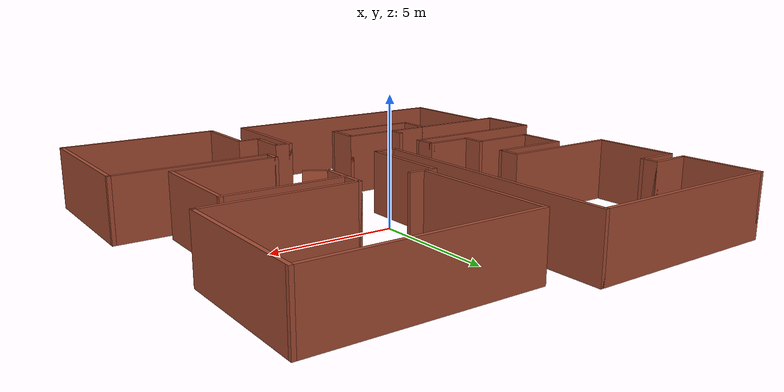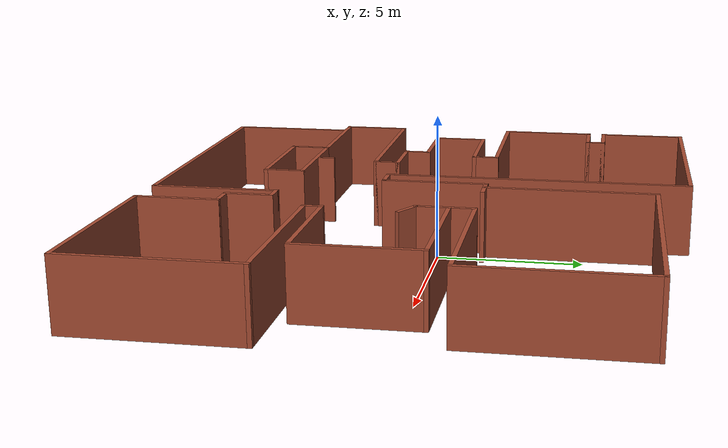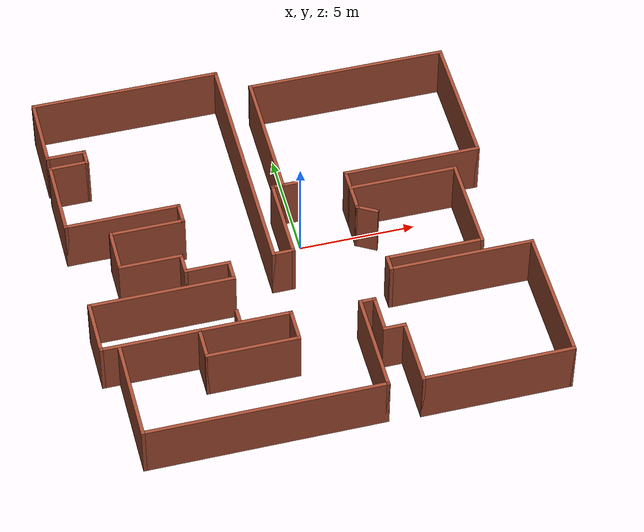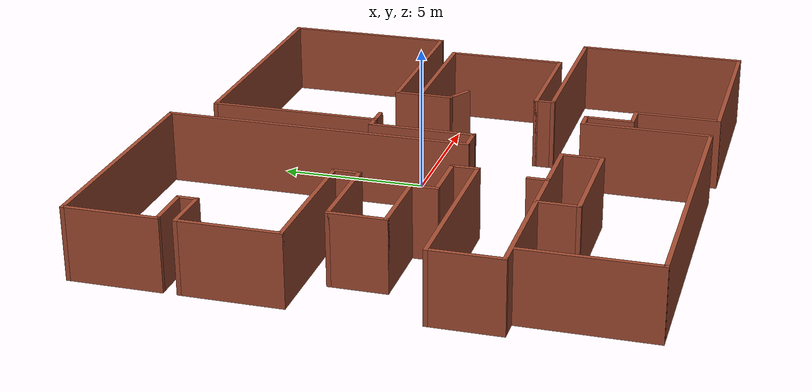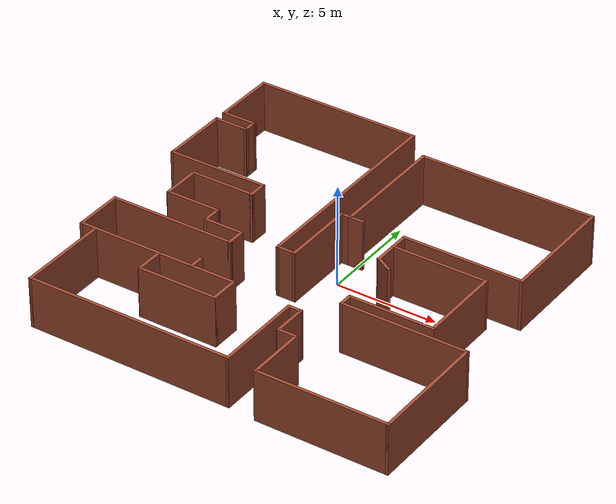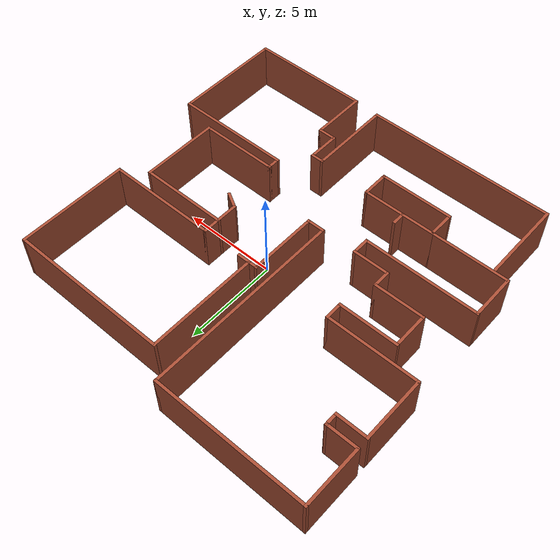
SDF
<?xml version='1.0'?>
<sdf version='1.6'>
  <model name='map_117'>
    <pose frame=''>-0.401822 -0.632233 0 0 -0 0</pose>
    <link name='Wall_10'>
      <collision name='Wall_10_Collision'>
        <geometry>
          <box>
            <size>0.75 0.15 2.5</size>
          </box>
        </geometry>
        <pose frame=''>0 0 1.25 0 -0 0</pose>
      </collision>
      <visual name='Wall_10_Visual'>
        <pose frame=''>0 0 1.25 0 -0 0</pose>
        <geometry>
          <box>
            <size>0.75 0.15 2.5</size>
          </box>
        </geometry>
        <material>
          <script>
            <uri>file://media/materials/scripts/gazebo.material</uri>
            <name>Gazebo/Bricks</name>
          </script>
          <ambient>1 1 1 1</ambient>
        </material>
        <meta>
          <layer>0</layer>
        </meta>
      </visual>
      <pose frame=''>-7.775 5.8 0 0 -0 -1.5708</pose>
    </link>
    <link name='Wall_11'>
      <collision name='Wall_11_Collision'>
        <geometry>
          <box>
            <size>1.75 0.15 2.5</size>
          </box>
        </geometry>
        <pose frame=''>0 0 1.25 0 -0 0</pose>
      </collision>
      <visual name='Wall_11_Visual'>
        <pose frame=''>0 0 1.25 0 -0 0</pose>
        <geometry>
          <box>
            <size>1.75 0.15 2.5</size>
          </box>
        </geometry>
        <material>
          <script>
            <uri>file://media/materials/scripts/gazebo.material</uri>
            <name>Gazebo/Bricks</name>
          </script>
          <ambient>1 1 1 1</ambient>
        </material>
        <meta>
          <layer>0</layer>
        </meta>
      </visual>
      <pose frame=''>-8.575 5.5 0 0 -0 3.14159</pose>
    </link>
    <link name='Wall_21'>
      <collision name='Wall_21_Collision'>
        <geometry>
          <box>
            <size>3.5 0.15 2.5</size>
          </box>
        </geometry>
        <pose frame=''>0 0 1.25 0 -0 0</pose>
      </collision>
      <visual name='Wall_21_Visual'>
        <pose frame=''>0 0 1.25 0 -0 0</pose>
        <geometry>
          <box>
            <size>3.5 0.15 2.5</size>
          </box>
        </geometry>
        <material>
          <script>
            <uri>file://media/materials/scripts/gazebo.material</uri>
            <name>Gazebo/Bricks</name>
          </script>
          <ambient>1 1 1 1</ambient>
        </material>
        <meta>
          <layer>0</layer>
        </meta>
      </visual>
      <pose frame=''>-9.375 3.825 0 0 -0 -1.5708</pose>
    </link>
    <link name='Wall_22'>
      <collision name='Wall_22_Collision'>
        <geometry>
          <box>
            <size>5 0.15 2.5</size>
          </box>
        </geometry>
        <pose frame=''>0 0 1.25 0 -0 0</pose>
      </collision>
      <visual name='Wall_22_Visual'>
        <pose frame=''>0 0 1.25 0 -0 0</pose>
        <geometry>
          <box>
            <size>5 0.15 2.5</size>
          </box>
        </geometry>
        <material>
          <script>
            <uri>file://media/materials/scripts/gazebo.material</uri>
            <name>Gazebo/Bricks</name>
          </script>
          <ambient>1 1 1 1</ambient>
        </material>
        <meta>
          <layer>0</layer>
        </meta>
      </visual>
      <pose frame=''>-6.95 2.15 0 0 -0 0</pose>
    </link>
    <link name='Wall_23'>
      <collision name='Wall_23_Collision'>
        <geometry>
          <box>
            <size>1 0.15 2.5</size>
          </box>
        </geometry>
        <pose frame=''>0 0 1.25 0 -0 0</pose>
      </collision>
      <visual name='Wall_23_Visual'>
        <pose frame=''>0 0 1.25 0 -0 0</pose>
        <geometry>
          <box>
            <size>1 0.15 2.5</size>
          </box>
        </geometry>
        <material>
          <script>
            <uri>file://media/materials/scripts/gazebo.material</uri>
            <name>Gazebo/Bricks</name>
          </script>
          <ambient>1 1 1 1</ambient>
        </material>
        <meta>
          <layer>0</layer>
        </meta>
      </visual>
      <pose frame=''>-4.525 1.725 0 0 -0 -1.5708</pose>
    </link>
    <link name='Wall_24'>
      <collision name='Wall_24_Collision'>
        <geometry>
          <box>
            <size>3.25 0.15 2.5</size>
          </box>
        </geometry>
        <pose frame=''>0 0 1.25 0 -0 0</pose>
      </collision>
      <visual name='Wall_24_Visual'>
        <pose frame=''>0 0 1.25 0 -0 0</pose>
        <geometry>
          <box>
            <size>3.25 0.15 2.5</size>
          </box>
        </geometry>
        <material>
          <script>
            <uri>file://media/materials/scripts/gazebo.material</uri>
            <name>Gazebo/Bricks</name>
          </script>
          <ambient>1 1 1 1</ambient>
        </material>
        <meta>
          <layer>0</layer>
        </meta>
      </visual>
      <pose frame=''>-6.075 1.3 0 0 -0 3.14159</pose>
    </link>
    <link name='Wall_25'>
      <collision name='Wall_25_Collision'>
        <geometry>
          <box>
            <size>2 0.15 2.5</size>
          </box>
        </geometry>
        <pose frame=''>0 0 1.25 0 -0 0</pose>
      </collision>
      <visual name='Wall_25_Visual'>
        <pose frame=''>0 0 1.25 0 -0 0</pose>
        <geometry>
          <box>
            <size>2 0.15 2.5</size>
          </box>
        </geometry>
        <material>
          <script>
            <uri>file://media/materials/scripts/gazebo.material</uri>
            <name>Gazebo/Bricks</name>
          </script>
          <ambient>1 1 1 1</ambient>
        </material>
        <meta>
          <layer>0</layer>
        </meta>
      </visual>
      <pose frame=''>-7.625 0.375 0 0 -0 -1.5708</pose>
    </link>
    <link name='Wall_26'>
      <collision name='Wall_26_Collision'>
        <geometry>
          <box>
            <size>2.75 0.15 2.5</size>
          </box>
        </geometry>
        <pose frame=''>0 0 1.25 0 -0 0</pose>
      </collision>
      <visual name='Wall_26_Visual'>
        <pose frame=''>0 0 1.25 0 -0 0</pose>
        <geometry>
          <box>
            <size>2.75 0.15 2.5</size>
          </box>
        </geometry>
        <material>
          <script>
            <uri>file://media/materials/scripts/gazebo.material</uri>
            <name>Gazebo/Bricks</name>
          </script>
          <ambient>1 1 1 1</ambient>
        </material>
        <meta>
          <layer>0</layer>
        </meta>
      </visual>
      <pose frame=''>-6.325 -0.55 0 0 -0 0</pose>
    </link>
    <link name='Wall_27'>
      <collision name='Wall_27_Collision'>
        <geometry>
          <box>
            <size>1 0.15 2.5</size>
          </box>
        </geometry>
        <pose frame=''>0 0 1.25 0 -0 0</pose>
      </collision>
      <visual name='Wall_27_Visual'>
        <pose frame=''>0 0 1.25 0 -0 0</pose>
        <geometry>
          <box>
            <size>1 0.15 2.5</size>
          </box>
        </geometry>
        <material>
          <script>
            <uri>file://media/materials/scripts/gazebo.material</uri>
            <name>Gazebo/Bricks</name>
          </script>
          <ambient>1 1 1 1</ambient>
        </material>
        <meta>
          <layer>0</layer>
        </meta>
      </visual>
      <pose frame=''>-5.025 -0.975 0 0 -0 -1.5708</pose>
    </link>
    <link name='Wall_28'>
      <collision name='Wall_28_Collision'>
        <geometry>
          <box>
            <size>2 0.15 2.5</size>
          </box>
        </geometry>
        <pose frame=''>0 0 1.25 0 -0 0</pose>
      </collision>
      <visual name='Wall_28_Visual'>
        <pose frame=''>0 0 1.25 0 -0 0</pose>
        <geometry>
          <box>
            <size>2 0.15 2.5</size>
          </box>
        </geometry>
        <material>
          <script>
            <uri>file://media/materials/scripts/gazebo.material</uri>
            <name>Gazebo/Bricks</name>
          </script>
          <ambient>1 1 1 1</ambient>
        </material>
        <meta>
          <layer>0</layer>
        </meta>
      </visual>
      <pose frame=''>-4.1 -1.4 0 0 -0 0</pose>
    </link>
    <link name='Wall_29'>
      <collision name='Wall_29_Collision'>
        <geometry>
          <box>
            <size>1 0.15 2.5</size>
          </box>
        </geometry>
        <pose frame=''>0 0 1.25 0 -0 0</pose>
      </collision>
      <visual name='Wall_29_Visual'>
        <pose frame=''>0 0 1.25 0 -0 0</pose>
        <geometry>
          <box>
            <size>1 0.15 2.5</size>
          </box>
        </geometry>
        <material>
          <script>
            <uri>file://media/materials/scripts/gazebo.material</uri>
            <name>Gazebo/Bricks</name>
          </script>
          <ambient>1 1 1 1</ambient>
        </material>
        <meta>
          <layer>0</layer>
        </meta>
      </visual>
      <pose frame=''>-3.175 -1.825 0 0 -0 -1.5708</pose>
    </link>
    <link name='Wall_30'>
      <collision name='Wall_30_Collision'>
        <geometry>
          <box>
            <size>6.25 0.15 2.5</size>
          </box>
        </geometry>
        <pose frame=''>0 0 1.25 0 -0 0</pose>
      </collision>
      <visual name='Wall_30_Visual'>
        <pose frame=''>0 0 1.25 0 -0 0</pose>
        <geometry>
          <box>
            <size>6.25 0.15 2.5</size>
          </box>
        </geometry>
        <material>
          <script>
            <uri>file://media/materials/scripts/gazebo.material</uri>
            <name>Gazebo/Bricks</name>
          </script>
          <ambient>1 1 1 1</ambient>
        </material>
        <meta>
          <layer>0</layer>
        </meta>
      </visual>
      <pose frame=''>-6.225 -2.25 0 0 -0 3.14159</pose>
    </link>
    <link name='Wall_31'>
      <collision name='Wall_31_Collision'>
        <geometry>
          <box>
            <size>2.5 0.15 2.5</size>
          </box>
        </geometry>
        <pose frame=''>0 0 1.25 0 -0 0</pose>
      </collision>
      <visual name='Wall_31_Visual'>
        <pose frame=''>0 0 1.25 0 -0 0</pose>
        <geometry>
          <box>
            <size>2.5 0.15 2.5</size>
          </box>
        </geometry>
        <material>
          <script>
            <uri>file://media/materials/scripts/gazebo.material</uri>
            <name>Gazebo/Bricks</name>
          </script>
          <ambient>1 1 1 1</ambient>
        </material>
        <meta>
          <layer>0</layer>
        </meta>
      </visual>
      <pose frame=''>-9.275 -3.425 0 0 -0 -1.5708</pose>
    </link>
    <link name='Wall_32'>
      <collision name='Wall_32_Collision'>
        <geometry>
          <box>
            <size>4.25 0.15 2.5</size>
          </box>
        </geometry>
        <pose frame=''>0 0 1.25 0 -0 0</pose>
      </collision>
      <visual name='Wall_32_Visual'>
        <pose frame=''>0 0 1.25 0 -0 0</pose>
        <geometry>
          <box>
            <size>4.25 0.15 2.5</size>
          </box>
        </geometry>
        <material>
          <script>
            <uri>file://media/materials/scripts/gazebo.material</uri>
            <name>Gazebo/Bricks</name>
          </script>
          <ambient>1 1 1 1</ambient>
        </material>
        <meta>
          <layer>0</layer>
        </meta>
      </visual>
      <pose frame=''>-7.225 -4.6 0 0 -0 0</pose>
    </link>
    <link name='Wall_40'>
      <collision name='Wall_40_Collision'>
        <geometry>
          <box>
            <size>4.5 0.15 2.5</size>
          </box>
        </geometry>
        <pose frame=''>0 0 1.25 0 -0 0</pose>
      </collision>
      <visual name='Wall_40_Visual'>
        <pose frame=''>0 0 1.25 0 -0 0</pose>
        <geometry>
          <box>
            <size>4.5 0.15 2.5</size>
          </box>
        </geometry>
        <material>
          <script>
            <uri>file://media/materials/scripts/gazebo.material</uri>
            <name>Gazebo/Bricks</name>
          </script>
          <ambient>1 1 1 1</ambient>
        </material>
        <meta>
          <layer>0</layer>
        </meta>
      </visual>
      <pose frame=''>-8.525 -6.925 0 0 -0 -1.5708</pose>
    </link>
    <link name='Wall_41'>
      <collision name='Wall_41_Collision'>
        <geometry>
          <box>
            <size>10.25 0.15 2.5</size>
          </box>
        </geometry>
        <pose frame=''>0 0 1.25 0 -0 0</pose>
      </collision>
      <visual name='Wall_41_Visual'>
        <pose frame=''>0 0 1.25 0 -0 0</pose>
        <geometry>
          <box>
            <size>10.25 0.15 2.5</size>
          </box>
        </geometry>
        <material>
          <script>
            <uri>file://media/materials/scripts/gazebo.material</uri>
            <name>Gazebo/Bricks</name>
          </script>
          <ambient>1 1 1 1</ambient>
        </material>
        <meta>
          <layer>0</layer>
        </meta>
      </visual>
      <pose frame=''>-3.475 -9.1 0 0 -0 0</pose>
    </link>
    <link name='Wall_42'>
      <collision name='Wall_42_Collision'>
        <geometry>
          <box>
            <size>4.5 0.15 2.5</size>
          </box>
        </geometry>
        <pose frame=''>0 0 1.25 0 -0 0</pose>
      </collision>
      <visual name='Wall_42_Visual'>
        <pose frame=''>0 0 1.25 0 -0 0</pose>
        <geometry>
          <box>
            <size>4.5 0.15 2.5</size>
          </box>
        </geometry>
        <material>
          <script>
            <uri>file://media/materials/scripts/gazebo.material</uri>
            <name>Gazebo/Bricks</name>
          </script>
          <ambient>1 1 1 1</ambient>
        </material>
        <meta>
          <layer>0</layer>
        </meta>
      </visual>
      <pose frame=''>1.575 -6.925 0 0 -0 1.5708</pose>
    </link>
    <link name='Wall_43'>
      <collision name='Wall_43_Collision'>
        <geometry>
          <box>
            <size>0.75 0.15 2.5</size>
          </box>
        </geometry>
        <pose frame=''>0 0 1.25 0 -0 0</pose>
      </collision>
      <visual name='Wall_43_Visual'>
        <pose frame=''>0 0 1.25 0 -0 0</pose>
        <geometry>
          <box>
            <size>0.75 0.15 2.5</size>
          </box>
        </geometry>
        <material>
          <script>
            <uri>file://media/materials/scripts/gazebo.material</uri>
            <name>Gazebo/Bricks</name>
          </script>
          <ambient>1 1 1 1</ambient>
        </material>
        <meta>
          <layer>0</layer>
        </meta>
      </visual>
      <pose frame=''>1.875 -4.75 0 0 -0 0</pose>
    </link>
    <link name='Wall_44'>
      <collision name='Wall_44_Collision'>
        <geometry>
          <box>
            <size>1.75 0.15 2.5</size>
          </box>
        </geometry>
        <pose frame=''>0 0 1.25 0 -0 0</pose>
      </collision>
      <visual name='Wall_44_Visual'>
        <pose frame=''>0 0 1.25 0 -0 0</pose>
        <geometry>
          <box>
            <size>1.75 0.15 2.5</size>
          </box>
        </geometry>
        <material>
          <script>
            <uri>file://media/materials/scripts/gazebo.material</uri>
            <name>Gazebo/Bricks</name>
          </script>
          <ambient>1 1 1 1</ambient>
        </material>
        <meta>
          <layer>0</layer>
        </meta>
      </visual>
      <pose frame=''>2.175 -5.55 0 0 -0 -1.5708</pose>
    </link>
    <link name='Wall_45'>
      <collision name='Wall_45_Collision'>
        <geometry>
          <box>
            <size>1 0.15 2.5</size>
          </box>
        </geometry>
        <pose frame=''>0 0 1.25 0 -0 0</pose>
      </collision>
      <visual name='Wall_45_Visual'>
        <pose frame=''>0 0 1.25 0 -0 0</pose>
        <geometry>
          <box>
            <size>1 0.15 2.5</size>
          </box>
        </geometry>
        <material>
          <script>
            <uri>file://media/materials/scripts/gazebo.material</uri>
            <name>Gazebo/Bricks</name>
          </script>
          <ambient>1 1 1 1</ambient>
        </material>
        <meta>
          <layer>0</layer>
        </meta>
      </visual>
      <pose frame=''>2.6 -6.35 0 0 -0 0</pose>
    </link>
    <link name='Wall_46'>
      <collision name='Wall_46_Collision'>
        <geometry>
          <box>
            <size>3 0.15 2.5</size>
          </box>
        </geometry>
        <pose frame=''>0 0 1.25 0 -0 0</pose>
      </collision>
      <visual name='Wall_46_Visual'>
        <pose frame=''>0 0 1.25 0 -0 0</pose>
        <geometry>
          <box>
            <size>3 0.15 2.5</size>
          </box>
        </geometry>
        <material>
          <script>
            <uri>file://media/materials/scripts/gazebo.material</uri>
            <name>Gazebo/Bricks</name>
          </script>
          <ambient>1 1 1 1</ambient>
        </material>
        <meta>
          <layer>0</layer>
        </meta>
      </visual>
      <pose frame=''>3.025 -7.775 0 0 -0 -1.5708</pose>
    </link>
    <link name='Wall_47'>
      <collision name='Wall_47_Collision'>
        <geometry>
          <box>
            <size>6.5 0.15 2.5</size>
          </box>
        </geometry>
        <pose frame=''>0 0 1.25 0 -0 0</pose>
      </collision>
      <visual name='Wall_47_Visual'>
        <pose frame=''>0 0 1.25 0 -0 0</pose>
        <geometry>
          <box>
            <size>6.5 0.15 2.5</size>
          </box>
        </geometry>
        <material>
          <script>
            <uri>file://media/materials/scripts/gazebo.material</uri>
            <name>Gazebo/Bricks</name>
          </script>
          <ambient>1 1 1 1</ambient>
        </material>
        <meta>
          <layer>0</layer>
        </meta>
      </visual>
      <pose frame=''>6.2 -9.2 0 0 -0 0</pose>
    </link>
    <link name='Wall_48'>
      <collision name='Wall_48_Collision'>
        <geometry>
          <box>
            <size>6 0.15 2.5</size>
          </box>
        </geometry>
        <pose frame=''>0 0 1.25 0 -0 0</pose>
      </collision>
      <visual name='Wall_48_Visual'>
        <pose frame=''>0 0 1.25 0 -0 0</pose>
        <geometry>
          <box>
            <size>6 0.15 2.5</size>
          </box>
        </geometry>
        <material>
          <script>
            <uri>file://media/materials/scripts/gazebo.material</uri>
            <name>Gazebo/Bricks</name>
          </script>
          <ambient>1 1 1 1</ambient>
        </material>
        <meta>
          <layer>0</layer>
        </meta>
      </visual>
      <pose frame=''>9.375 -6.275 0 0 -0 1.5708</pose>
    </link>
    <link name='Wall_49'>
      <collision name='Wall_49_Collision'>
        <geometry>
          <box>
            <size>6.25 0.15 2.5</size>
          </box>
        </geometry>
        <pose frame=''>0 0 1.25 0 -0 0</pose>
      </collision>
      <visual name='Wall_49_Visual'>
        <pose frame=''>0 0 1.25 0 -0 0</pose>
        <geometry>
          <box>
            <size>6.25 0.15 2.5</size>
          </box>
        </geometry>
        <material>
          <script>
            <uri>file://media/materials/scripts/gazebo.material</uri>
            <name>Gazebo/Bricks</name>
          </script>
          <ambient>1 1 1 1</ambient>
        </material>
        <meta>
          <layer>0</layer>
        </meta>
      </visual>
      <pose frame=''>6.325 -3.35 0 0 -0 3.14159</pose>
    </link>
    <link name='Wall_50'>
      <collision name='Wall_50_Collision'>
        <geometry>
          <box>
            <size>0.75 0.15 2.5</size>
          </box>
        </geometry>
        <pose frame=''>0 0 1.25 0 -0 0</pose>
      </collision>
      <visual name='Wall_50_Visual'>
        <pose frame=''>0 0 1.25 0 -0 0</pose>
        <geometry>
          <box>
            <size>0.75 0.15 2.5</size>
          </box>
        </geometry>
        <material>
          <script>
            <uri>file://media/materials/scripts/gazebo.material</uri>
            <name>Gazebo/Bricks</name>
          </script>
          <ambient>1 1 1 1</ambient>
        </material>
        <meta>
          <layer>0</layer>
        </meta>
      </visual>
      <pose frame=''>3.275 -3.05 0 0 -0 1.5708</pose>
    </link>
    <link name='Wall_51'>
      <collision name='Wall_51_Collision'>
        <geometry>
          <box>
            <size>4.25 0.15 2.5</size>
          </box>
        </geometry>
        <pose frame=''>0 0 1.25 0 -0 0</pose>
      </collision>
      <visual name='Wall_51_Visual'>
        <pose frame=''>0 0 1.25 0 -0 0</pose>
        <geometry>
          <box>
            <size>4.25 0.15 2.5</size>
          </box>
        </geometry>
        <material>
          <script>
            <uri>file://media/materials/scripts/gazebo.material</uri>
            <name>Gazebo/Bricks</name>
          </script>
          <ambient>1 1 1 1</ambient>
        </material>
        <meta>
          <layer>0</layer>
        </meta>
      </visual>
      <pose frame=''>5.325 -2.75 0 0 -0 0</pose>
    </link>
    <link name='Wall_52'>
      <collision name='Wall_52_Collision'>
        <geometry>
          <box>
            <size>4.25 0.15 2.5</size>
          </box>
        </geometry>
        <pose frame=''>0 0 1.25 0 -0 0</pose>
      </collision>
      <visual name='Wall_52_Visual'>
        <pose frame=''>0 0 1.25 0 -0 0</pose>
        <geometry>
          <box>
            <size>4.25 0.15 2.5</size>
          </box>
        </geometry>
        <material>
          <script>
            <uri>file://media/materials/scripts/gazebo.material</uri>
            <name>Gazebo/Bricks</name>
          </script>
          <ambient>1 1 1 1</ambient>
        </material>
        <meta>
          <layer>0</layer>
        </meta>
      </visual>
      <pose frame=''>7.375 -0.7 0 0 -0 1.5708</pose>
    </link>
    <link name='Wall_53'>
      <collision name='Wall_53_Collision'>
        <geometry>
          <box>
            <size>4.75 0.15 2.5</size>
          </box>
        </geometry>
        <pose frame=''>0 0 1.25 0 -0 0</pose>
      </collision>
      <visual name='Wall_53_Visual'>
        <pose frame=''>0 0 1.25 0 -0 0</pose>
        <geometry>
          <box>
            <size>4.75 0.15 2.5</size>
          </box>
        </geometry>
        <material>
          <script>
            <uri>file://media/materials/scripts/gazebo.material</uri>
            <name>Gazebo/Bricks</name>
          </script>
          <ambient>1 1 1 1</ambient>
        </material>
        <meta>
          <layer>0</layer>
        </meta>
      </visual>
      <pose frame=''>5.075 1.35 0 0 -0 3.14159</pose>
    </link>
    <link name='Wall_54'>
      <collision name='Wall_54_Collision'>
        <geometry>
          <box>
            <size>1 0.15 2.5</size>
          </box>
        </geometry>
        <pose frame=''>0 0 1.25 0 -0 0</pose>
      </collision>
      <visual name='Wall_54_Visual'>
        <pose frame=''>0 0 1.25 0 -0 0</pose>
        <geometry>
          <box>
            <size>1 0.15 2.5</size>
          </box>
        </geometry>
        <material>
          <script>
            <uri>file://media/materials/scripts/gazebo.material</uri>
            <name>Gazebo/Bricks</name>
          </script>
          <ambient>1 1 1 1</ambient>
        </material>
        <meta>
          <layer>0</layer>
        </meta>
      </visual>
      <pose frame=''>2.775 1.775 0 0 -0 1.5708</pose>
    </link>
    <link name='Wall_55'>
      <collision name='Wall_55_Collision'>
        <geometry>
          <box>
            <size>6 0.15 2.5</size>
          </box>
        </geometry>
        <pose frame=''>0 0 1.25 0 -0 0</pose>
      </collision>
      <visual name='Wall_55_Visual'>
        <pose frame=''>0 0 1.25 0 -0 0</pose>
        <geometry>
          <box>
            <size>6 0.15 2.5</size>
          </box>
        </geometry>
        <material>
          <script>
            <uri>file://media/materials/scripts/gazebo.material</uri>
            <name>Gazebo/Bricks</name>
          </script>
          <ambient>1 1 1 1</ambient>
        </material>
        <meta>
          <layer>0</layer>
        </meta>
      </visual>
      <pose frame=''>5.7 2.2 0 0 -0 0</pose>
    </link>
    <link name='Wall_58'>
      <collision name='Wall_58_Collision'>
        <geometry>
          <box>
            <size>6 0.15 2.5</size>
          </box>
        </geometry>
        <pose frame=''>0 0 1.25 0 -0 0</pose>
      </collision>
      <visual name='Wall_58_Visual'>
        <pose frame=''>0 0 1.25 0 -0 0</pose>
        <geometry>
          <box>
            <size>6 0.15 2.5</size>
          </box>
        </geometry>
        <material>
          <script>
            <uri>file://media/materials/scripts/gazebo.material</uri>
            <name>Gazebo/Bricks</name>
          </script>
          <ambient>1 1 1 1</ambient>
        </material>
        <meta>
          <layer>0</layer>
        </meta>
      </visual>
      <pose frame=''>8.625 5.125 0 0 -0 1.5708</pose>
    </link>
    <link name='Wall_59'>
      <collision name='Wall_59_Collision'>
        <geometry>
          <box>
            <size>8.75 0.15 2.5</size>
          </box>
        </geometry>
        <pose frame=''>0 0 1.25 0 -0 0</pose>
      </collision>
      <visual name='Wall_59_Visual'>
        <pose frame=''>0 0 1.25 0 -0 0</pose>
        <geometry>
          <box>
            <size>8.75 0.15 2.5</size>
          </box>
        </geometry>
        <material>
          <script>
            <uri>file://media/materials/scripts/gazebo.material</uri>
            <name>Gazebo/Bricks</name>
          </script>
          <ambient>1 1 1 1</ambient>
        </material>
        <meta>
          <layer>0</layer>
        </meta>
      </visual>
      <pose frame=''>4.325 8.05 0 0 -0 3.14159</pose>
    </link>
    <link name='Wall_60'>
      <collision name='Wall_60_Collision'>
        <geometry>
          <box>
            <size>6 0.15 2.5</size>
          </box>
        </geometry>
        <pose frame=''>0 0 1.25 0 -0 0</pose>
      </collision>
      <visual name='Wall_60_Visual'>
        <pose frame=''>0 0 1.25 0 -0 0</pose>
        <geometry>
          <box>
            <size>6 0.15 2.5</size>
          </box>
        </geometry>
        <material>
          <script>
            <uri>file://media/materials/scripts/gazebo.material</uri>
            <name>Gazebo/Bricks</name>
          </script>
          <ambient>1 1 1 1</ambient>
        </material>
        <meta>
          <layer>0</layer>
        </meta>
      </visual>
      <pose frame=''>0.024999 5.125 0 0 -0 -1.5708</pose>
    </link>
    <link name='Wall_64'>
      <collision name='Wall_64_Collision'>
        <geometry>
          <box>
            <size>0.75 0.15 2.5</size>
          </box>
        </geometry>
        <pose frame=''>0 0 1.25 0 -0 0</pose>
      </collision>
      <visual name='Wall_64_Visual'>
        <pose frame=''>0 0 1.25 0 -0 0</pose>
        <geometry>
          <box>
            <size>0.75 0.15 2.5</size>
          </box>
        </geometry>
        <material>
          <script>
            <uri>file://media/materials/scripts/gazebo.material</uri>
            <name>Gazebo/Bricks</name>
          </script>
          <ambient>1 1 1 1</ambient>
        </material>
        <meta>
          <layer>0</layer>
        </meta>
      </visual>
      <pose frame=''>0.324999 2.2 0 0 -0 0</pose>
    </link>
    <link name='Wall_66'>
      <collision name='Wall_66_Collision'>
        <geometry>
          <box>
            <size>8.25 0.15 2.5</size>
          </box>
        </geometry>
        <pose frame=''>0 0 1.25 0 -0 0</pose>
      </collision>
      <visual name='Wall_66_Visual'>
        <pose frame=''>0 0 1.25 0 -0 0</pose>
        <geometry>
          <box>
            <size>8.25 0.15 2.5</size>
          </box>
        </geometry>
        <material>
          <script>
            <uri>file://media/materials/scripts/gazebo.material</uri>
            <name>Gazebo/Bricks</name>
          </script>
          <ambient>1 1 1 1</ambient>
        </material>
        <meta>
          <layer>0</layer>
        </meta>
      </visual>
      <pose frame=''>-5.325 9.2 0 0 -0 0</pose>
    </link>
    <link name='Wall_67'>
      <collision name='Wall_67_Collision'>
        <geometry>
          <box>
            <size>10.75 0.15 2.5</size>
          </box>
        </geometry>
        <pose frame=''>0 0 1.25 0 -0 0</pose>
      </collision>
      <visual name='Wall_67_Visual'>
        <pose frame=''>0 0 1.25 0 -0 0</pose>
        <geometry>
          <box>
            <size>10.75 0.15 2.5</size>
          </box>
        </geometry>
        <material>
          <script>
            <uri>file://media/materials/scripts/gazebo.material</uri>
            <name>Gazebo/Bricks</name>
          </script>
          <ambient>1 1 1 1</ambient>
        </material>
        <meta>
          <layer>0</layer>
        </meta>
      </visual>
      <pose frame=''>-1.275 3.9 0 0 -0 -1.5708</pose>
    </link>
    <link name='Wall_68'>
      <collision name='Wall_68_Collision'>
        <geometry>
          <box>
            <size>1 0.15 2.5</size>
          </box>
        </geometry>
        <pose frame=''>0 0 1.25 0 -0 0</pose>
      </collision>
      <visual name='Wall_68_Visual'>
        <pose frame=''>0 0 1.25 0 -0 0</pose>
        <geometry>
          <box>
            <size>1 0.15 2.5</size>
          </box>
        </geometry>
        <material>
          <script>
            <uri>file://media/materials/scripts/gazebo.material</uri>
            <name>Gazebo/Bricks</name>
          </script>
          <ambient>1 1 1 1</ambient>
        </material>
        <meta>
          <layer>0</layer>
        </meta>
      </visual>
      <pose frame=''>-0.850001 -1.4 0 0 -0 0</pose>
    </link>
    <link name='Wall_69'>
      <collision name='Wall_69_Collision'>
        <geometry>
          <box>
            <size>3.75 0.15 2.5</size>
          </box>
        </geometry>
        <pose frame=''>0 0 1.25 0 -0 0</pose>
      </collision>
      <visual name='Wall_69_Visual'>
        <pose frame=''>0 0 1.25 0 -0 0</pose>
        <geometry>
          <box>
            <size>3.75 0.15 2.5</size>
          </box>
        </geometry>
        <material>
          <script>
            <uri>file://media/materials/scripts/gazebo.material</uri>
            <name>Gazebo/Bricks</name>
          </script>
          <ambient>1 1 1 1</ambient>
        </material>
        <meta>
          <layer>0</layer>
        </meta>
      </visual>
      <pose frame=''>-0.425 0.4 0 0 -0 1.5708</pose>
    </link>
    <link name='Wall_71'>
      <collision name='Wall_71_Collision'>
        <geometry>
          <box>
            <size>0.6 0.15 2.5</size>
          </box>
        </geometry>
        <pose frame=''>0 0 1.25 0 -0 0</pose>
      </collision>
      <visual name='Wall_71_Visual'>
        <pose frame=''>0 0 1.25 0 -0 0</pose>
        <geometry>
          <box>
            <size>0.6 0.15 2.5</size>
          </box>
        </geometry>
        <material>
          <script>
            <uri>file://media/materials/scripts/gazebo.material</uri>
            <name>Gazebo/Bricks</name>
          </script>
          <ambient>1 1 1 1</ambient>
        </material>
        <meta>
          <layer>0</layer>
        </meta>
      </visual>
      <pose frame=''>-0.200001 2.2 0 0 -0 0</pose>
    </link>
    <link name='Wall_73'>
      <collision name='Wall_73_Collision'>
        <geometry>
          <box>
            <size>4 0.15 2.5</size>
          </box>
        </geometry>
        <pose frame=''>0 0 1.25 0 -0 0</pose>
      </collision>
      <visual name='Wall_73_Visual'>
        <pose frame=''>0 0 1.25 0 -0 0</pose>
        <geometry>
          <box>
            <size>4 0.15 2.5</size>
          </box>
        </geometry>
        <material>
          <script>
            <uri>file://media/materials/scripts/gazebo.material</uri>
            <name>Gazebo/Bricks</name>
          </script>
          <ambient>1 1 1 1</ambient>
        </material>
        <meta>
          <layer>0</layer>
        </meta>
      </visual>
      <pose frame=''>-3.25 -4.6 0 0 -0 0</pose>
    </link>
    <link name='Wall_74'>
      <collision name='Wall_74_Collision'>
        <geometry>
          <box>
            <size>1.5 0.15 2.5</size>
          </box>
        </geometry>
        <pose frame=''>0 0 1.25 0 -0 0</pose>
      </collision>
      <visual name='Wall_74_Visual'>
        <pose frame=''>0 0 1.25 0 -0 0</pose>
        <geometry>
          <box>
            <size>1.5 0.15 2.5</size>
          </box>
        </geometry>
        <material>
          <script>
            <uri>file://media/materials/scripts/gazebo.material</uri>
            <name>Gazebo/Bricks</name>
          </script>
          <ambient>1 1 1 1</ambient>
        </material>
        <meta>
          <layer>0</layer>
        </meta>
      </visual>
      <pose frame=''>-1.325 -5.275 0 0 -0 -1.5708</pose>
    </link>
    <link name='Wall_75'>
      <collision name='Wall_75_Collision'>
        <geometry>
          <box>
            <size>4 0.15 2.5</size>
          </box>
        </geometry>
        <pose frame=''>0 0 1.25 0 -0 0</pose>
      </collision>
      <visual name='Wall_75_Visual'>
        <pose frame=''>0 0 1.25 0 -0 0</pose>
        <geometry>
          <box>
            <size>4 0.15 2.5</size>
          </box>
        </geometry>
        <material>
          <script>
            <uri>file://media/materials/scripts/gazebo.material</uri>
            <name>Gazebo/Bricks</name>
          </script>
          <ambient>1 1 1 1</ambient>
        </material>
        <meta>
          <layer>0</layer>
        </meta>
      </visual>
      <pose frame=''>-3.25 -5.95 0 0 -0 3.14159</pose>
    </link>
    <link name='Wall_76'>
      <collision name='Wall_76_Collision'>
        <geometry>
          <box>
            <size>1.5 0.15 2.5</size>
          </box>
        </geometry>
        <pose frame=''>0 0 1.25 0 -0 0</pose>
      </collision>
      <visual name='Wall_76_Visual'>
        <pose frame=''>0 0 1.25 0 -0 0</pose>
        <geometry>
          <box>
            <size>1.5 0.15 2.5</size>
          </box>
        </geometry>
        <material>
          <script>
            <uri>file://media/materials/scripts/gazebo.material</uri>
            <name>Gazebo/Bricks</name>
          </script>
          <ambient>1 1 1 1</ambient>
        </material>
        <meta>
          <layer>0</layer>
        </meta>
      </visual>
      <pose frame=''>-5.175 -5.275 0 0 -0 1.5708</pose>
    </link>
    <link name='Wall_78'>
      <collision name='Wall_78_Collision'>
        <geometry>
          <box>
            <size>0.75 0.15 2.5</size>
          </box>
        </geometry>
        <pose frame=''>0 0 1.25 0 -0 0</pose>
      </collision>
      <visual name='Wall_78_Visual'>
        <pose frame=''>0 0 1.25 0 -0 0</pose>
        <geometry>
          <box>
            <size>0.75 0.15 2.5</size>
          </box>
        </geometry>
        <material>
          <script>
            <uri>file://media/materials/scripts/gazebo.material</uri>
            <name>Gazebo/Bricks</name>
          </script>
          <ambient>1 1 1 1</ambient>
        </material>
        <meta>
          <layer>0</layer>
        </meta>
      </visual>
      <pose frame=''>-3.4674 -4.28498 0 0 -0 1.5708</pose>
    </link>
    <link name='Wall_8'>
      <collision name='Wall_8_Collision'>
        <geometry>
          <box>
            <size>3.25 0.15 2.5</size>
          </box>
        </geometry>
        <pose frame=''>0 0 1.25 0 -0 0</pose>
      </collision>
      <visual name='Wall_8_Visual'>
        <pose frame=''>0 0 1.25 0 -0 0</pose>
        <geometry>
          <box>
            <size>3.25 0.15 2.5</size>
          </box>
        </geometry>
        <material>
          <script>
            <uri>file://media/materials/scripts/gazebo.material</uri>
            <name>Gazebo/Bricks</name>
          </script>
          <ambient>1 1 1 1</ambient>
        </material>
        <meta>
          <layer>0</layer>
        </meta>
      </visual>
      <pose frame=''>-9.375 7.65 0 0 -0 -1.5708</pose>
    </link>
    <link name='Wall_80'>
      <collision name='Wall_80_Collision'>
        <geometry>
          <box>
            <size>1.25 0.15 2.5</size>
          </box>
        </geometry>
        <pose frame=''>0 0 1.25 0 -0 0</pose>
      </collision>
      <visual name='Wall_80_Visual'>
        <pose frame=''>0 0 1.25 0 -0 0</pose>
        <geometry>
          <box>
            <size>1.25 0.15 2.5</size>
          </box>
        </geometry>
        <material>
          <script>
            <uri>file://media/materials/scripts/gazebo.material</uri>
            <name>Gazebo/Bricks</name>
          </script>
          <ambient>1 1 1 1</ambient>
        </material>
        <meta>
          <layer>0</layer>
        </meta>
      </visual>
      <pose frame=''>2.775 0.8 0 0 -0 -1.5708</pose>
    </link>
    <link name='Wall_81'>
      <collision name='Wall_81_Collision'>
        <geometry>
          <box>
            <size>1 0.15 2.5</size>
          </box>
        </geometry>
        <pose frame=''>0 0 1.25 0 -0 0</pose>
      </collision>
      <visual name='Wall_81_Visual'>
        <pose frame=''>0 0 1.25 0 -0 0</pose>
        <geometry>
          <box>
            <size>1 0.15 2.5</size>
          </box>
        </geometry>
        <material>
          <script>
            <uri>file://media/materials/scripts/gazebo.material</uri>
            <name>Gazebo/Bricks</name>
          </script>
          <ambient>1 1 1 1</ambient>
        </material>
        <meta>
          <layer>0</layer>
        </meta>
      </visual>
      <pose frame=''>3.14306 0.0375 0 0 -0 -0.523599</pose>
    </link>
    <link name='Wall_9'>
      <collision name='Wall_9_Collision'>
        <geometry>
          <box>
            <size>1.75 0.15 2.5</size>
          </box>
        </geometry>
        <pose frame=''>0 0 1.25 0 -0 0</pose>
      </collision>
      <visual name='Wall_9_Visual'>
        <pose frame=''>0 0 1.25 0 -0 0</pose>
        <geometry>
          <box>
            <size>1.75 0.15 2.5</size>
          </box>
        </geometry>
        <material>
          <script>
            <uri>file://media/materials/scripts/gazebo.material</uri>
            <name>Gazebo/Bricks</name>
          </script>
          <ambient>1 1 1 1</ambient>
        </material>
        <meta>
          <layer>0</layer>
        </meta>
      </visual>
      <pose frame=''>-8.575 6.1 0 0 -0 0</pose>
    </link>
    <static>1</static>
  </model>
</sdf>
